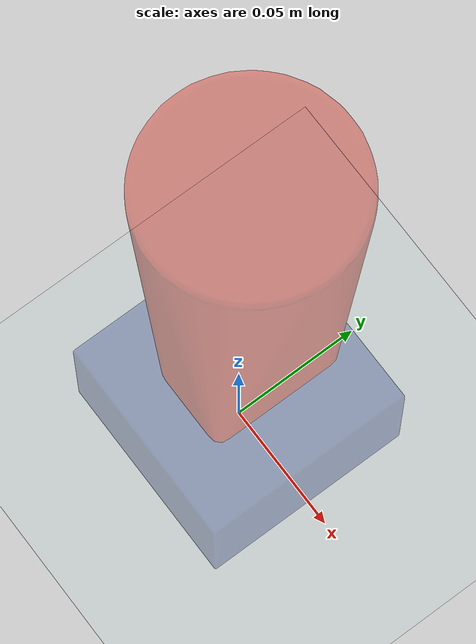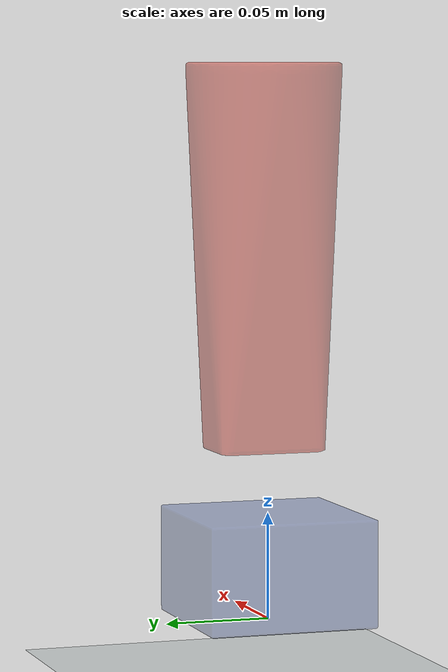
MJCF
<mujoco model="rect_peg_in_hole_mesh_coacd_soft">

  <compiler angle="radian"
            meshdir="../urdf/meshes"/>

  <option timestep="0.005"
          solver="Newton"
          iterations="10"
          ls_iterations="50"
          gravity="0 0 0"
          cone="pyramidal"/>

  <custom>
    <numeric data="40" name="max_contact_points"/>
    <numeric data="40" name="max_geom_pairs"/>
  </custom>

  <visual>
    <global offwidth="1280" offheight="900"/>
    <headlight ambient="0.35 0.35 0.35" diffuse="0.65 0.65 0.65" specular="0.1 0.1 0.1"/>
  </visual>

  <asset>
    <mesh name="rectangular_peg_visual_mesh" file="rectangular_peg.obj"/>
    <mesh name="rectangular_hole_visual_mesh" file="rectangular_hole.obj"/>
    <mesh name="rectangular_peg_coacd_000_mesh"
          file="coacd_rect_peg_in_hole/rectangular_peg_coacd_000.obj"/>
    <mesh name="rectangular_hole_coacd_000_mesh"
          file="coacd_rect_peg_in_hole/rectangular_hole_coacd_000.obj"/>

    <texture name="checker" type="2d" builtin="checker"
             width="512" height="512"
             rgb1="0.92 0.92 0.88" rgb2="0.68 0.72 0.76"/>
    <material name="checker_mat" texture="checker" texrepeat="10 10" reflectance="0.15"/>
  </asset>

  <default>
    <geom condim="3"
          friction="1.0 0.005 0.0001"
          solref="0.03 1"
          solimp="0 0.9 0.01 0.5 2"/>
  </default>

  <worldbody>
    <light name="key_light" pos="0.35 -0.55 1.0" dir="-0.35 0.55 -1"/>
    <geom name="floor"
          type="plane"
          pos="0 0 -0.026"
          size="0.5 0.5 0.01"
          contype="0"
          conaffinity="0"
          material="checker_mat"/>

    <geom name="hole_visual"
          type="mesh"
          mesh="rectangular_hole_visual_mesh"
          pos="0 0 0"
          contype="0"
          conaffinity="0"
          rgba="0.68 0.73 0.82 0.35"/>
    <geom name="hole_coacd_000_collision"
          type="mesh"
          mesh="rectangular_hole_coacd_000_mesh"
          pos="0 0 0"
          contype="1"
          conaffinity="1"
          rgba="0.14 0.25 0.55 0.35"/>

    <body name="peg" pos="0.006 0 0.23" euler="0 0 1.5707963267948966">
      <joint name="insertion_slide" type="slide" axis="0 0 1"/>
      <geom name="peg_visual"
            type="mesh"
            mesh="rectangular_peg_visual_mesh"
            euler="1.5707963267948966 0 0"
            density="0"
            contype="0"
            conaffinity="0"
            rgba="0.95 0.58 0.44 0.35"/>
      <geom name="peg_coacd_000_collision"
            type="mesh"
            mesh="rectangular_peg_coacd_000_mesh"
            euler="1.5707963267948966 0 0"
            mass="0.49468"
            contype="1"
            conaffinity="1"
            rgba="0.85 0.18 0.12 0.45"/>
    </body>
  </worldbody>

  <actuator>
    <velocity name="insertion_velocity_servo"
              joint="insertion_slide"
              kv="20"
              ctrllimited="true"
              ctrlrange="-1 1"/>
  </actuator>
</mujoco>
